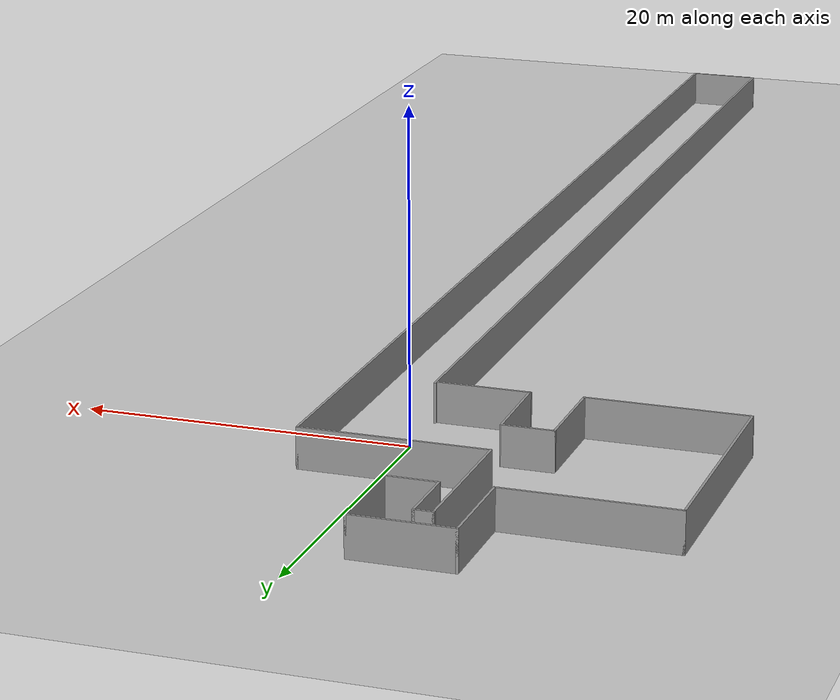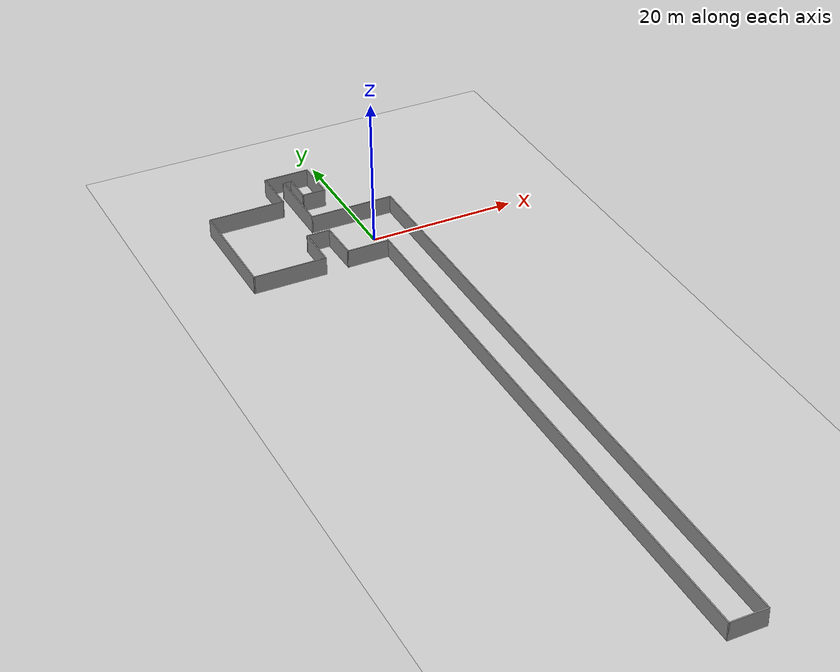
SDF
<sdf version="1.7">
 <world name="default">
  <light name="sun" type="directional">
   <pose>0 0 10 0 -0 0</pose>
   <diffuse>0.8 0.8 0.8 1</diffuse>
   <specular>0.2 0.2 0.2 1</specular>
   <attenuation>
    <range>1000</range>
    <constant>0.9</constant>
    <linear>0.01</linear>
    <quadratic>0.001</quadratic>
   </attenuation>
   <direction>-0.5 0.1 -0.9</direction>
   <spot><inner_angle>0</inner_angle><outer_angle>0</outer_angle><falloff>0</falloff></spot>
  </light>
  <model name="ground_plane">
   <static>1</static>
   <link name="link">
    <collision name="collision">
     <geometry><plane><normal>0 0 1</normal><size>100 100</size></plane></geometry>
     <surface><friction><ode><mu>100</mu><mu2>50</mu2></ode></friction></surface>
    </collision>
    <visual name="visual">
     <cast_shadows>0</cast_shadows>
     <geometry><plane><normal>0 0 1</normal><size>100 100</size></plane></geometry>
     <material>
      <script><uri>file://media/materials/scripts/gazebo.material</uri><name>Gazebo/Grey</name></script>
     </material>
    </visual>
   </link>
  </model>
  <gravity>0 0 -9.8</gravity>
  <magnetic_field>6e-06 2.3e-05 -4.2e-05</magnetic_field>
  <atmosphere type="adiabatic"/>
  <physics type="ode">
   <max_step_size>0.001</max_step_size>
   <real_time_factor>1</real_time_factor>
   <real_time_update_rate>1000</real_time_update_rate>
  </physics>
  <scene><ambient>0.4 0.4 0.4 1</ambient><background>0.7 0.7 0.7 1</background><shadows>1</shadows></scene>
  <audio><device>default</device></audio>
  <spherical_coordinates>
   <surface_model>EARTH_WGS84</surface_model>
   <latitude_deg>0</latitude_deg>
   <longitude_deg>0</longitude_deg>
   <elevation>0</elevation>
   <heading_deg>0</heading_deg>
  </spherical_coordinates>
  <model name="Untitled3">
   <pose>-6.96 -33.79 0 0 -0 0</pose>
   <link name="Wall_0">
    <collision name="Wall_0_Collision">
     <geometry><box><size>5.75 0.15 2.5</size></box></geometry>
     <pose>0 0 1.25 0 -0 0</pose>
    </collision>
    <visual name="Wall_0_Visual">
     <pose>0 0 1.25 0 -0 0</pose>
     <geometry><box><size>5.75 0.15 2.5</size></box></geometry>
     <material>
      <script><uri>file://media/materials/scripts/gazebo.material</uri><name>Gazebo/Grey</name></script>
      <ambient>1 1 1 1</ambient>
     </material>
     <meta><layer>0</layer></meta>
    </visual>
    <pose>4.02076 29.3292 0 0 -0 3.14159</pose>
   </link>
   <link name="Wall_1">
    <collision name="Wall_1_Collision">
     <geometry><box><size>5.8212 0.15 2.5</size></box></geometry>
     <pose>0 0 1.25 0 -0 0</pose>
    </collision>
    <visual name="Wall_1_Visual">
     <pose>0 0 1.25 0 -0 0</pose>
     <geometry><box><size>5.8212 0.15 2.5</size></box></geometry>
     <material>
      <script><uri>file://media/materials/scripts/gazebo.material</uri><name>Gazebo/Grey</name></script>
      <ambient>1 1 1 1</ambient>
     </material>
     <meta><layer>0</layer></meta>
    </visual>
    <pose>1.20307 32.1646 0 0 -0 1.58951</pose>
   </link>
   <link name="Wall_10">
    <collision name="Wall_10_Collision">
     <geometry><box><size>3.25 0.15 2.5</size></box></geometry>
     <pose>0 0 1.25 0 -0 0</pose>
    </collision>
    <visual name="Wall_10_Visual">
     <pose>0 0 1.25 0 -0 0</pose>
     <geometry><box><size>3.25 0.15 2.5</size></box></geometry>
     <material>
      <script><uri>file://media/materials/scripts/gazebo.material</uri><name>Gazebo/Grey</name></script>
      <ambient>1 1 1 1</ambient>
     </material>
     <meta><layer>0</layer></meta>
    </visual>
    <pose>3.1 44.5 0 0 -0 3.14159</pose>
   </link>
   <link name="Wall_11">
    <collision name="Wall_11_Collision">
     <geometry><box><size>4.25 0.15 2.5</size></box></geometry>
     <pose>0 0 1.25 0 -0 0</pose>
    </collision>
    <visual name="Wall_11_Visual">
     <pose>0 0 1.25 0 -0 0</pose>
     <geometry><box><size>4.25 0.15 2.5</size></box></geometry>
     <material>
      <script><uri>file://media/materials/scripts/gazebo.material</uri><name>Gazebo/Grey</name></script>
      <ambient>1 1 1 1</ambient>
     </material>
     <meta><layer>0</layer></meta>
    </visual>
    <pose>1.55 46.55 0 0 -0 1.5708</pose>
   </link>
   <link name="Wall_12">
    <collision name="Wall_12_Collision">
     <geometry><box><size>1.25 0.15 2.5</size></box></geometry>
     <pose>0 0 1.25 0 -0 0</pose>
    </collision>
    <visual name="Wall_12_Visual">
     <pose>0 0 1.25 0 -0 0</pose>
     <geometry><box><size>1.25 0.15 2.5</size></box></geometry>
     <material>
      <script><uri>file://media/materials/scripts/gazebo.material</uri><name>Gazebo/Grey</name></script>
      <ambient>1 1 1 1</ambient>
     </material>
     <meta><layer>0</layer></meta>
    </visual>
    <pose>0.999998 48.6 0 0 -0 3.14159</pose>
   </link>
   <link name="Wall_13">
    <collision name="Wall_13_Collision">
     <geometry><box><size>9.75 0.15 2.5</size></box></geometry>
     <pose>0 0 1.25 0 -0 0</pose>
    </collision>
    <visual name="Wall_13_Visual">
     <pose>0 0 1.25 0 -0 0</pose>
     <geometry><box><size>9.75 0.15 2.5</size></box></geometry>
     <material>
      <script><uri>file://media/materials/scripts/gazebo.material</uri><name>Gazebo/Grey</name></script>
      <ambient>1 1 1 1</ambient>
     </material>
     <meta><layer>0</layer></meta>
    </visual>
    <pose>0.449997 43.8 0 0 -0 -1.5708</pose>
   </link>
   <link name="Wall_14">
    <collision name="Wall_14_Collision">
     <geometry><box><size>11.5 0.15 2.5</size></box></geometry>
     <pose>0 0 1.25 0 -0 0</pose>
    </collision>
    <visual name="Wall_14_Visual">
     <pose>0 0 1.25 0 -0 0</pose>
     <geometry><box><size>11.5 0.15 2.5</size></box></geometry>
     <material>
      <script><uri>file://media/materials/scripts/gazebo.material</uri><name>Gazebo/Grey</name></script>
      <ambient>1 1 1 1</ambient>
     </material>
     <meta><layer>0</layer></meta>
    </visual>
    <pose>6.125 39 0 0 -0 0</pose>
   </link>
   <link name="Wall_15">
    <collision name="Wall_15_Collision">
     <geometry><box><size>89.5 0.15 2.5</size></box></geometry>
     <pose>0 0 1.25 0 -0 0</pose>
    </collision>
    <visual name="Wall_15_Visual">
     <pose>0 0 1.25 0 -0 0</pose>
     <geometry><box><size>89.5 0.15 2.5</size></box></geometry>
     <material>
      <script><uri>file://media/materials/scripts/gazebo.material</uri><name>Gazebo/Grey</name></script>
      <ambient>1 1 1 1</ambient>
     </material>
     <meta><layer>0</layer></meta>
    </visual>
    <pose>11.8 -5.675 0 0 -0 -1.5708</pose>
   </link>
   <link name="Wall_16">
    <collision name="Wall_16_Collision">
     <geometry><box><size>5 0.15 2.5</size></box></geometry>
     <pose>0 0 1.25 0 -0 0</pose>
    </collision>
    <visual name="Wall_16_Visual">
     <pose>0 0 1.25 0 -0 0</pose>
     <geometry><box><size>5 0.15 2.5</size></box></geometry>
     <material>
      <script><uri>file://media/materials/scripts/gazebo.material</uri><name>Gazebo/Grey</name></script>
      <ambient>1 1 1 1</ambient>
     </material>
     <meta><layer>0</layer></meta>
    </visual>
    <pose>9.375 -50.35 0 0 -0 3.14159</pose>
   </link>
   <link name="Wall_17">
    <collision name="Wall_17_Collision">
     <geometry><box><size>80 0.15 2.5</size></box></geometry>
     <pose>0 0 1.25 0 -0 0</pose>
    </collision>
    <visual name="Wall_17_Visual">
     <pose>0 0 1.25 0 -0 0</pose>
     <geometry><box><size>80 0.15 2.5</size></box></geometry>
     <material>
      <script><uri>file://media/materials/scripts/gazebo.material</uri><name>Gazebo/Grey</name></script>
      <ambient>1 1 1 1</ambient>
     </material>
     <meta><layer>0</layer></meta>
    </visual>
    <pose>6.95 -10.425 0 0 -0 1.5708</pose>
   </link>
   <link name="Wall_2">
    <collision name="Wall_2_Collision">
     <geometry><box><size>3.25 0.15 2.5</size></box></geometry>
     <pose>0 0 1.25 0 -0 0</pose>
    </collision>
    <visual name="Wall_2_Visual">
     <pose>0 0 1.25 0 -0 0</pose>
     <geometry><box><size>3.25 0.15 2.5</size></box></geometry>
     <material>
      <script><uri>file://media/materials/scripts/gazebo.material</uri><name>Gazebo/Grey</name></script>
      <ambient>1 1 1 1</ambient>
     </material>
     <meta><layer>0</layer></meta>
    </visual>
    <pose>-0.400002 35 0 0 -0 3.14159</pose>
   </link>
   <link name="Wall_3">
    <collision name="Wall_3_Collision">
     <geometry><box><size>6 0.15 2.5</size></box></geometry>
     <pose>0 0 1.25 0 -0 0</pose>
    </collision>
    <visual name="Wall_3_Visual">
     <pose>0 0 1.25 0 -0 0</pose>
     <geometry><box><size>6 0.15 2.5</size></box></geometry>
     <material>
      <script><uri>file://media/materials/scripts/gazebo.material</uri><name>Gazebo/Grey</name></script>
      <ambient>1 1 1 1</ambient>
     </material>
     <meta><layer>0</layer></meta>
    </visual>
    <pose>-1.95 32.075 0 0 -0 -1.5708</pose>
   </link>
   <link name="Wall_4">
    <collision name="Wall_4_Collision">
     <geometry><box><size>10 0.15 2.5</size></box></geometry>
     <pose>0 0 1.25 0 -0 0</pose>
    </collision>
    <visual name="Wall_4_Visual">
     <pose>0 0 1.25 0 -0 0</pose>
     <geometry><box><size>10 0.15 2.5</size></box></geometry>
     <material>
      <script><uri>file://media/materials/scripts/gazebo.material</uri><name>Gazebo/Grey</name></script>
      <ambient>1 1 1 1</ambient>
     </material>
     <meta><layer>0</layer></meta>
    </visual>
    <pose>-6.875 29.15 0 0 -0 3.14159</pose>
   </link>
   <link name="Wall_5">
    <collision name="Wall_5_Collision">
     <geometry><box><size>15.25 0.15 2.5</size></box></geometry>
     <pose>0 0 1.25 0 -0 0</pose>
    </collision>
    <visual name="Wall_5_Visual">
     <pose>0 0 1.25 0 -0 0</pose>
     <geometry><box><size>15.25 0.15 2.5</size></box></geometry>
     <material>
      <script><uri>file://media/materials/scripts/gazebo.material</uri><name>Gazebo/Grey</name></script>
      <ambient>1 1 1 1</ambient>
     </material>
     <meta><layer>0</layer></meta>
    </visual>
    <pose>-11.8 36.7 0 0 -0 1.5708</pose>
   </link>
   <link name="Wall_6">
    <collision name="Wall_6_Collision">
     <geometry><box><size>10.5 0.15 2.5</size></box></geometry>
     <pose>0 0 1.25 0 -0 0</pose>
    </collision>
    <visual name="Wall_6_Visual">
     <pose>0 0 1.25 0 -0 0</pose>
     <geometry><box><size>10.5 0.15 2.5</size></box></geometry>
     <material>
      <script><uri>file://media/materials/scripts/gazebo.material</uri><name>Gazebo/Grey</name></script>
      <ambient>1 1 1 1</ambient>
     </material>
     <meta><layer>0</layer></meta>
    </visual>
    <pose>-6.625 44.25 0 0 -0 0</pose>
   </link>
   <link name="Wall_7">
    <collision name="Wall_7_Collision">
     <geometry><box><size>6.25 0.15 2.5</size></box></geometry>
     <pose>0 0 1.25 0 -0 0</pose>
    </collision>
    <visual name="Wall_7_Visual">
     <pose>0 0 1.25 0 -0 0</pose>
     <geometry><box><size>6.25 0.15 2.5</size></box></geometry>
     <material>
      <script><uri>file://media/materials/scripts/gazebo.material</uri><name>Gazebo/Grey</name></script>
      <ambient>1 1 1 1</ambient>
     </material>
     <meta><layer>0</layer></meta>
    </visual>
    <pose>-1.45 47.3 0 0 -0 1.5708</pose>
   </link>
   <link name="Wall_8">
    <collision name="Wall_8_Collision">
     <geometry><box><size>6.25 0.15 2.5</size></box></geometry>
     <pose>0 0 1.25 0 -0 0</pose>
    </collision>
    <visual name="Wall_8_Visual">
     <pose>0 0 1.25 0 -0 0</pose>
     <geometry><box><size>6.25 0.15 2.5</size></box></geometry>
     <material>
      <script><uri>file://media/materials/scripts/gazebo.material</uri><name>Gazebo/Grey</name></script>
      <ambient>1 1 1 1</ambient>
     </material>
     <meta><layer>0</layer></meta>
    </visual>
    <pose>1.6 50.35 0 0 -0 0</pose>
   </link>
   <link name="Wall_9">
    <collision name="Wall_9_Collision">
     <geometry><box><size>6 0.15 2.5</size></box></geometry>
     <pose>0 0 1.25 0 -0 0</pose>
    </collision>
    <visual name="Wall_9_Visual">
     <pose>0 0 1.25 0 -0 0</pose>
     <geometry><box><size>6 0.15 2.5</size></box></geometry>
     <material>
      <script><uri>file://media/materials/scripts/gazebo.material</uri><name>Gazebo/Grey</name></script>
      <ambient>1 1 1 1</ambient>
     </material>
     <meta><layer>0</layer></meta>
    </visual>
    <pose>4.65 47.425 0 0 -0 -1.5708</pose>
   </link>
   <static>1</static>
  </model>
 </world>
</sdf>
